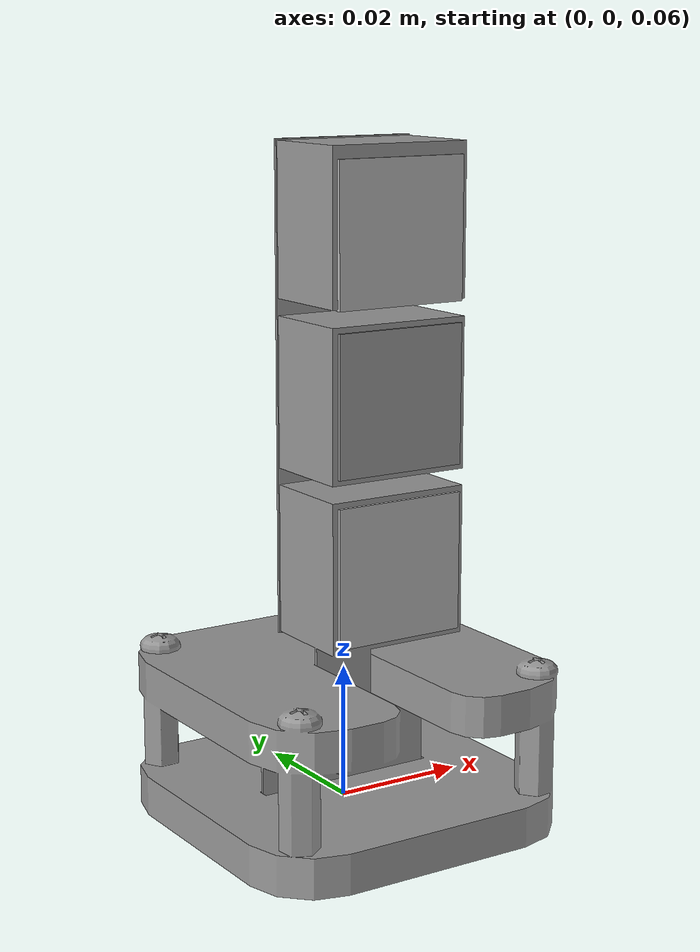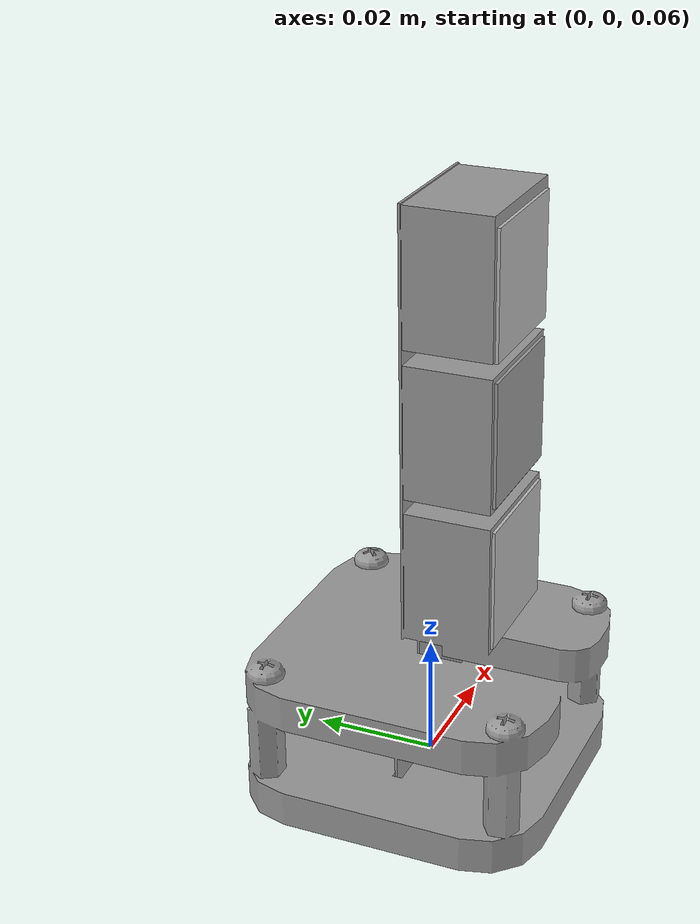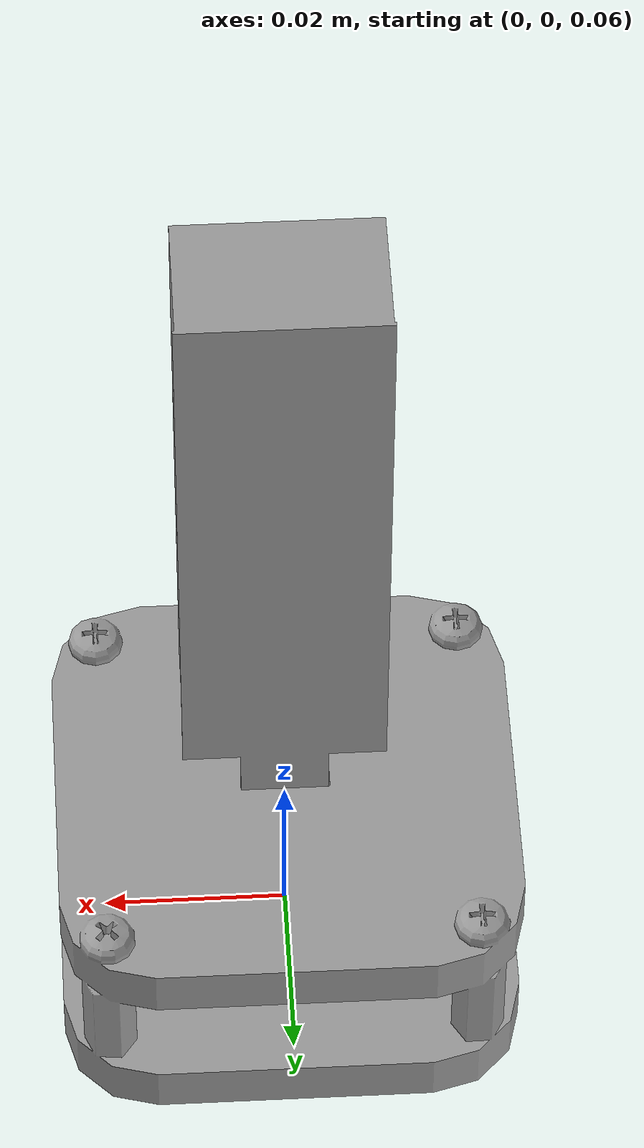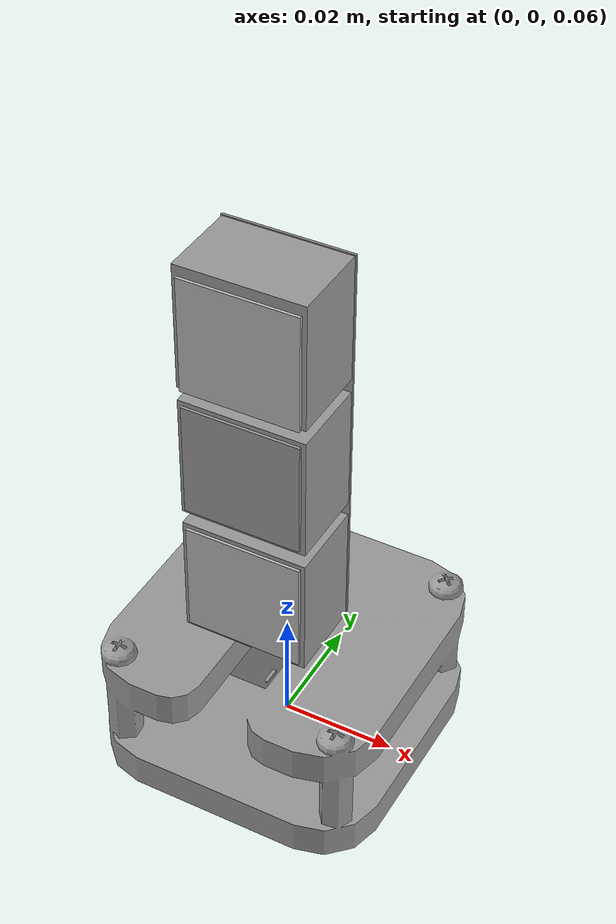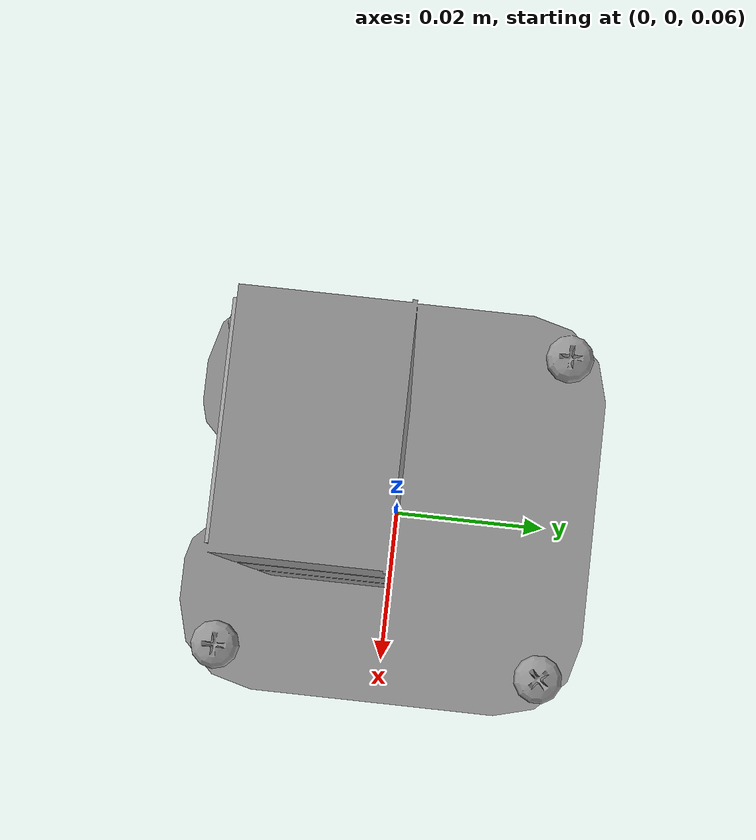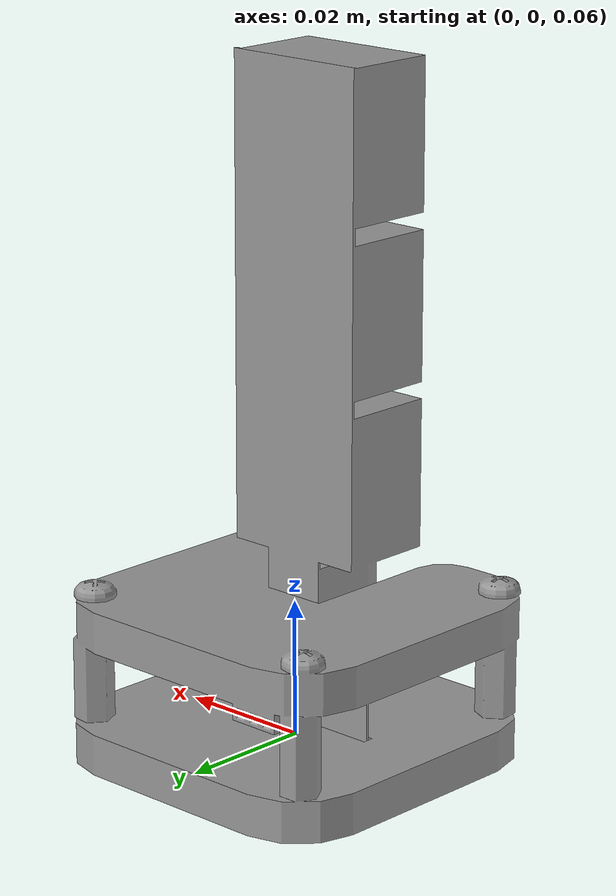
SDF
<?xml version='1.0'?>
<sdf version='1.6'>
  <model name='Traffic_Light_2'>
    <link name='base'>
      <!--visual for base-->
      <visual name='visual'>
        <pose frame=''>0 0 0.06 1.5707 0 0</pose>
          <geometry>
          <!--mesh-->
            <mesh>
                  <uri>model://Traffic_Light/meshes/traffic_light_stand.stl</uri>
                  <scale>1 1 1</scale>
            </mesh>
          </geometry>
          <material>
            <script>
              <name>Gazebo/Grey</name>
              <uri>file://media/materials/scripts/gazebo.material</uri>
            </script>
          </material>
      </visual>
      <!--collision for base-->
      <collision name='collision'>
        <pose frame=''>0 0 0.12 0 -0 0</pose>
          <geometry>
            <cylinder>
              <radius>0.02</radius>
              <length>0.12</length>
            </cylinder>
          </geometry>
      </collision>
      <!--inertial for base-->
      <inertial>
        <pose frame=''>0 0 0 0 0 0</pose>
        <mass>0.015</mass>
        <inertia>
          <ixx>0.166667</ixx>
          <ixy>0</ixy>
          <ixz>0</ixz>
          <iyy>0.166667</iyy>
          <iyz>0</iyz>
          <izz>0.166667</izz>
        </inertia>
      </inertial>
    </link>
    <link name='green_light'>
    <!--visual for green light-->
      <visual name='visual'>
      <pose frame=''>0 -0.014 0.098 0 0 0</pose>
        <geometry>
          <box>
            <size>0.02 0.001 0.02</size>
          </box>
        </geometry>
      <plugin name="color timed" filename="libcolor_timer_plugin.so">
          <color>0 1 0 1</color>
          <period>20</period>
          <use_wall_time>true</use_wall_time>
      </plugin>
      </visual>
      <!--inertial for green light-->
      <inertial>
        <pose frame=''>0 0 0 0 -0 0</pose>
        <mass>0.001</mass>
        <inertia>
          <ixx>0.166667</ixx>
          <ixy>0</ixy>
          <ixz>0</ixz>
          <iyy>0.166667</iyy>
          <iyz>0</iyz>
          <izz>0.166667</izz>
        </inertia>
      </inertial>
    </link>
    <link name='amber_light'>
      <!--visual for amber light-->
      <visual name='visual'>
      <pose frame=''>0 -0.014 0.122 0 0 0</pose>
        <geometry>
          <box>
            <size>0.02 0.001 0.02</size>
          </box>
        </geometry>
         <material>
          <script>
            <uri>file://media/materials/scripts/gazebo.material</uri>
            <name>Gazebo/Grey</name>
          </script>
        </material>
	</visual>
      <!--collision for amber light-->
      <!--inertial for amber light-->
      <inertial>
        <pose frame=''>0 0 0 0 0 0</pose>
        <mass>0.001</mass>
        <inertia>
          <ixx>0.166667</ixx>
          <ixy>0</ixy>
          <ixz>0</ixz>
          <iyy>0.166667</iyy>
          <iyz>0</iyz>
          <izz>0.166667</izz>
        </inertia>
      </inertial>
      <!--additionals for amber light-->
    </link>
    <link name='red_light'>
      <!--visual for red light-->
      <visual name='visual'>
        <pose frame=''>0 -0.014 0.145 0 0 0</pose>
        <!-- original but I would reduce to one and cero -->
        <geometry>
          <box>
            <size>0.02 0.001 0.02</size>
          </box>
        </geometry>
      <plugin name="color timed" filename="libcolor_timer_plugin.so">
          <color>1 0 0 0</color>
          <period>20</period>
          <use_wall_time>true</use_wall_time>
       </plugin>
      </visual>
      <!--Inertial for red light-->
      <inertial>
       <pose frame=''>0 0 0 0 0 0</pose>
        <mass>0.001</mass>
        <inertia>
          <ixx>0.166667</ixx>
          <ixy>0</ixy>
          <ixz>0</ixz>
          <iyy>0.166667</iyy>
          <iyz>0</iyz>
          <izz>0.166667</izz>
        </inertia>
      </inertial>
    </link>
    <!--Joint-->
    <joint name='joint_red' type='fixed'>
      <parent>base</parent>
      <child>red_light</child>
      <pose frame=''>0 0 0 0 0 0</pose>
    </joint>
    <joint name='joint_amber' type='fixed'>
      <parent>base</parent>
      <child>amber_light</child>
      <pose frame=''>0 0 0 0 0 0</pose>
    </joint>
    <joint name='joint_green' type='fixed'>
      <parent>base</parent>
      <child>green_light</child>
      <pose frame=''>0 0 0 0 0 0</pose>
    </joint>
    <static>0</static>
    <allow_auto_disable>1</allow_auto_disable>
  </model>
</sdf>
